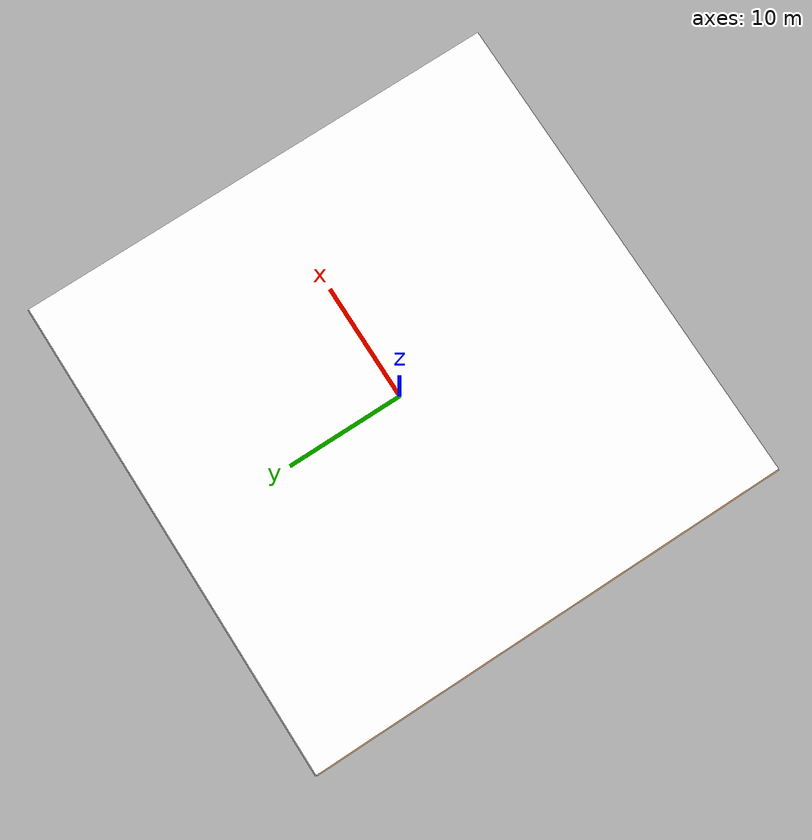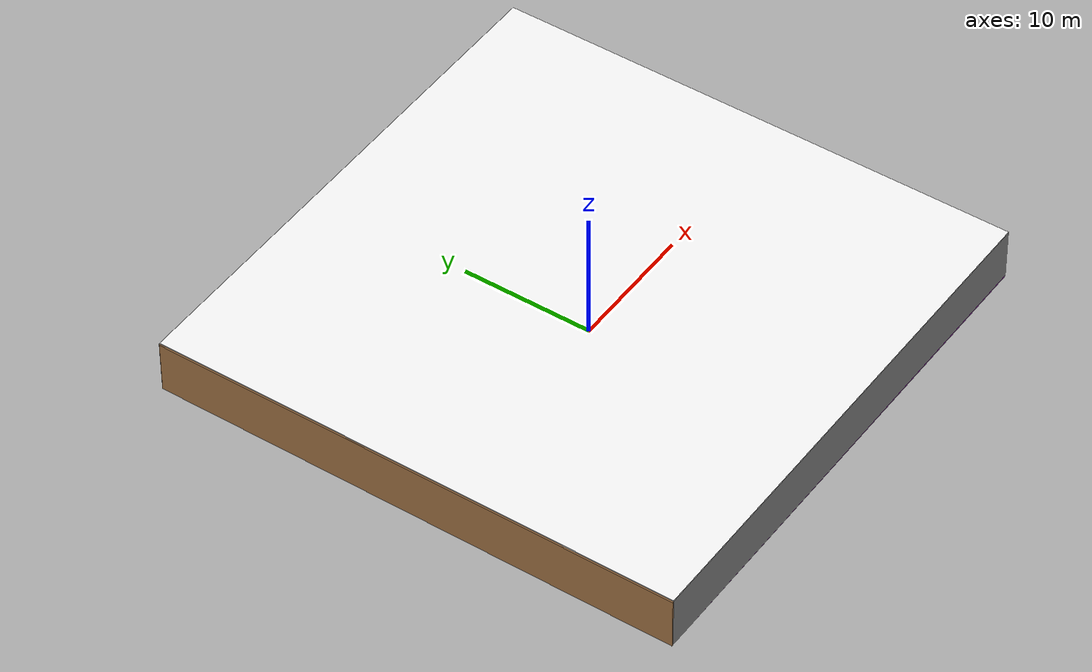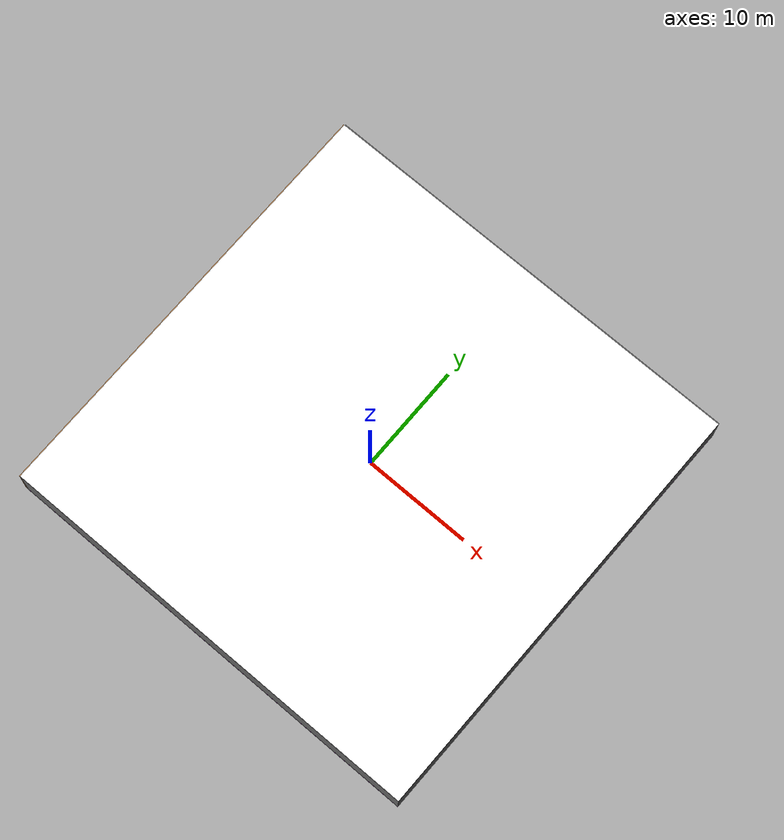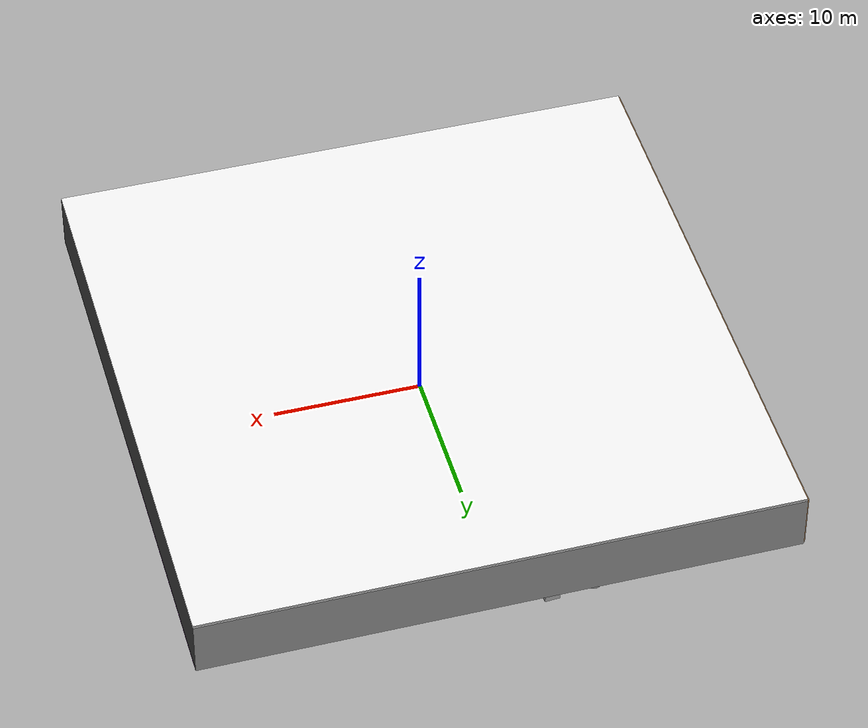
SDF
<sdf version="1.4">
 <world name="default">
  <physics type="ode">
   <max_step_size>0.001</max_step_size>
   <real_time_factor>1</real_time_factor>
   <real_time_update_rate>1000</real_time_update_rate>
   <gravity>0 0 -9.8</gravity>
  </physics>
  <scene><ambient>0.4 0.4 0.4 1</ambient><background>0.7 0.7 0.7 1</background><shadows>1</shadows></scene>
  <model name="Surrounding">
   <static>1</static>
   <link name="Ceiling">
    <collision name="Ceiling_Collision"><geometry><box><size>40 40 0.1</size></box></geometry></collision>
    <visual name="Ceiling_Visual">
     <geometry><box><size>40 40 0.1</size></box></geometry>
     <material>
      <script><uri>file://media/materials/scripts/gazebo.material</uri><name>Gazebo/WhiteGlow</name></script>
     </material>
    </visual>
    <pose>0 0 4.05 0 0 0</pose>
   </link>
   <link name="Wall_South">
    <collision name="Wall_South_Collision">
     <geometry><box><size>40 0 4</size></box></geometry>
     <pose>0 0 2 0 -0 0</pose>
    </collision>
    <visual name="Wall_South_Visual">
     <pose>0 0 2 0 -0 0</pose>
     <geometry><box><size>40 0 4</size></box></geometry>
     <material>
      <script><uri>file://media/materials/scripts/gazebo.material</uri><name>Gazebo/GreyGradientSky</name></script>
     </material>
    </visual>
    <velocity_decay><linear>0</linear><angular>0</angular></velocity_decay>
    <pose>0 -20 0 0 -0 0</pose>
   </link>
   <link name="Wall_East">
    <collision name="Wall_21_Collision">
     <geometry><box><size>40 0 4</size></box></geometry>
     <pose>0 0 2 0 -0 0</pose>
    </collision>
    <visual name="Wall_21_Visual">
     <pose>0 0 2 0 -0 0</pose>
     <geometry><box><size>40 0 4</size></box></geometry>
     <material>
      <script><uri>file://media/materials/scripts/gazebo.material</uri><name>Gazebo/DarkGrey</name></script>
     </material>
    </visual>
    <velocity_decay><linear>0</linear><angular>0</angular></velocity_decay>
    <pose>20 0 0 0 -0 1.5708</pose>
   </link>
   <link name="Wall_North">
    <collision name="Wall_22_Collision">
     <geometry><box><size>40 0.2 4</size></box></geometry>
     <pose>0 0 2 0 -0 0</pose>
    </collision>
    <visual name="Wall_22_Visual">
     <pose>0 0 2 0 -0 0</pose>
     <geometry><box><size>40 0.2 4</size></box></geometry>
     <material>
      <script><uri>file://media/materials/scripts/gazebo.material</uri><name>Gazebo/GreyGradientSky</name></script>
     </material>
    </visual>
    <velocity_decay><linear>0</linear><angular>0</angular></velocity_decay>
    <pose>0 20 0 0 -0 0</pose>
   </link>
   <link name="Wall_West">
    <collision name="Wall_23_Collision">
     <geometry><box><size>40 0.2 4</size></box></geometry>
     <pose>0 0 2 0 -0 0</pose>
    </collision>
    <visual name="Wall_23_Visual">
     <pose>0 0 2 0 -0 0</pose>
     <geometry><box><size>40 0.2 4</size></box></geometry>
     <material>
      <script><uri>file://media/materials/scripts/gazebo.material</uri><name>Gazebo/WoodFloor</name></script>
     </material>
    </visual>
    <velocity_decay><linear>0</linear><angular>0</angular></velocity_decay>
    <pose>-20 0 0 0 0 -1.5708</pose>
   </link>
   <link name="Ground_link">
    <collision name="collision">
     <pose>0 0 .05 0 -0 0</pose>
     <geometry><box><size>40 40 0.1</size></box></geometry>
    </collision>
    <visual name="visual">
     <pose>0 0 .05 0 -0 0</pose>
     <geometry><box><size>40 40 0.1</size></box></geometry>
     <material>
      <script><uri>file://media/materials/scripts/gazebo.material</uri><name>Gazebo/PurpleGlow</name></script>
     </material>
    </visual>
   </link>
   <static>1</static>
  </model>
  <spherical_coordinates>
   <surface_model>EARTH_WGS84</surface_model>
   <latitude_deg>0</latitude_deg>
   <longitude_deg>0</longitude_deg>
   <elevation>0</elevation>
   <heading_deg>0</heading_deg>
  </spherical_coordinates>
  <light name="lightball_0" type="diffuse">
   <diffuse>0.8 0.8 0.8 1</diffuse>
   <specular>0.2 0.2 0.2 1</specular>
   <attenuation>
    <range>100</range>
    <constant>0.7</constant>
    <linear>0.01</linear>
    <quadratic>0.001</quadratic>
   </attenuation>
   <direction>-0.5 0.1 -0.9</direction>
   <pose>14.5635231839 7.65231735805 2.32482643002 0 0 0</pose>
  </light>
  <light name="lightball_1" type="diffuse">
   <diffuse>0.8 0.8 0.8 1</diffuse>
   <specular>0.2 0.2 0.2 1</specular>
   <attenuation>
    <range>100</range>
    <constant>0.7</constant>
    <linear>0.01</linear>
    <quadratic>0.001</quadratic>
   </attenuation>
   <direction>-0.5 0.1 -0.9</direction>
   <pose>-5.96230932949 -12.1281901252 3.29322171421 0 0 0</pose>
  </light>
  <light name="lightball_2" type="diffuse">
   <diffuse>0.8 0.8 0.8 1</diffuse>
   <specular>0.2 0.2 0.2 1</specular>
   <attenuation>
    <range>100</range>
    <constant>0.7</constant>
    <linear>0.01</linear>
    <quadratic>0.001</quadratic>
   </attenuation>
   <direction>-0.5 0.1 -0.9</direction>
   <pose>-0.390260539433 5.0127035459 2.3932827838 0 0 0</pose>
  </light>
  <include><uri>model://cabinet</uri><pose>-16.4708447831 16.3401088895 0 0 0 1.37156791857</pose></include>
  <include>
   <uri>model://textured_shapes</uri>
   <pose>-13.5771557546 -15.4804386128 0 0 0 2.21154645942</pose>
  </include>
  <include><uri>model://cabinet</uri><pose>-13.9492969202 -6.36148730966 0 0 0 1.55912711794</pose></include>
  <include>
   <uri>model://robocup_3Dsim_goal</uri>
   <pose>-12.4717727768 -2.94684058437 0 0 0 1.51810186148</pose>
  </include>
  <include><uri>model://cabinet</uri><pose>-8.26108718551 10.3091368532 0 0 0 1.30038798996</pose></include>
  <include>
   <uri>model://robocup_3Dsim_goal</uri>
   <pose>-6.39012301918 11.8023761187 0 0 0 0.679966285241</pose>
  </include>
  <include>
   <uri>model://textured_shapes</uri>
   <pose>-4.68187516907 19.3973765161 0 0 0 1.63488314303</pose>
  </include>
  <include>
   <uri>model://robocup_3Dsim_goal</uri>
   <pose>-3.0207716279 -10.8478564234 0 0 0 1.79168621584</pose>
  </include>
  <include>
   <uri>model://textured_shapes</uri>
   <pose>-3.21250361874 -0.463739432779 0 0 0 2.11153107324</pose>
  </include>
  <include>
   <uri>model://robocup_3Dsim_goal</uri>
   <pose>-0.173822238177 -14.5731772428 0 0 0 0.49359573778</pose>
  </include>
  <include>
   <uri>model://construction_cone</uri>
   <pose>-0.577595440835 -1.77891010358 0 0 0 1.59122563687</pose>
  </include>
  <include><uri>model://cabinet</uri><pose>0.707607506051 9.40099812401 0 0 0 2.24581817408</pose></include>
  <include>
   <uri>model://robocup_3Dsim_goal</uri>
   <pose>2.40129314604 4.34578838063 0 0 0 0.998552190087</pose>
  </include>
  <include><uri>model://cabinet</uri><pose>6.4764222368 -12.3635765157 0 0 0 2.26371350507</pose></include>
  <include><uri>model://cabinet</uri><pose>6.69311268349 -4.32784846665 0 0 0 2.00087051253</pose></include>
  <include><uri>model://cabinet</uri><pose>9.6201373128 -13.6744462938 0 0 0 3.01393420917</pose></include>
  <include><uri>model://cabinet</uri><pose>8.79087485862 -8.16305515544 0 0 0 2.50237615432</pose></include>
  <include>
   <uri>model://construction_cone</uri>
   <pose>9.10170025876 -4.56469421343 0 0 0 2.06160377914</pose>
  </include>
  <include>
   <uri>model://textured_shapes</uri>
   <pose>8.58717388715 17.8637736402 0 0 0 1.01514288189</pose>
  </include>
  <include><uri>model://cabinet</uri><pose>16.4444793814 14.9586660126 0 0 0 0.443725926331</pose></include>
 </world>
</sdf>

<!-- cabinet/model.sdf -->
<sdf version="1.5">
  <model name="cabinet">
    <static>true</static>
    <link name="cabinet_bottom_plate">
      <inertial>
        <pose>0 0 -1 0 0 0</pose>
        <inertia>
          <ixx>2.050000</ixx>
          <ixy>0</ixy>
          <ixz>0</ixz>
          <iyy>2.050000</iyy>
          <iyz>0</iyz>
          <izz>2.050000</izz>
        </inertia>
        <mass>25.000000</mass>
      </inertial>
      <collision name="cabinet_bottom_plate_geom">
        <pose>0 0 0.010000 0 0 0</pose>
        <geometry>
          <box>
            <size>0.450000 0.450000 0.020000</size>
          </box>
        </geometry>
      </collision>
      <visual name="cabinet_bottom_plate_geom_visual">
        <pose>0 0 0.010000 0 0 0</pose>
        <geometry>
          <box>
            <size>0.450000 0.450000 0.020000</size>
          </box>
        </geometry>
        <material>
          <script>
            <uri>model://media/materials/scripts/gazebo.material</uri>
            <name>Gazebo/Wood</name>
          </script>
        </material>
      </visual>
      <collision name="cabinet_bottom_plate_geom_cabinet_back_plate">
        <pose>0.235000 0 0.510000 0 0 0</pose>
        <geometry>
          <box>
            <size>0.020000 0.450000 1.020000</size>
          </box>
        </geometry>
      </collision>
      <visual name="cabinet_bottom_plate_geom_cabinet_back_plate_visual">
        <pose>0.235000 0 0.510000 0 0 0</pose>
        <geometry>
          <box>
            <size>0.020000 0.450000 1.020000</size>
          </box>
        </geometry>
        <material>
          <script>
            <uri>model://media/materials/scripts/gazebo.material</uri>
            <name>Gazebo/Wood</name>
          </script>
        </material>
      </visual>
      <collision name="cabinet_bottom_plate_geom_cabinet_left_plate">
        <pose>0 0.235000 0.510000 0 0 0</pose>
        <geometry>
          <box>
            <size>0.450000 0.020000 1.020000</size>
          </box>
        </geometry>
      </collision>
      <visual name="cabinet_bottom_plate_geom_cabinet_left_plate_visual">
        <pose>0 0.235000 0.510000 0 0 0</pose>
        <geometry>
          <box>
            <size>0.450000 0.020000 1.020000</size>
          </box>
        </geometry>
        <material>
          <script>
            <uri>model://media/materials/scripts/gazebo.material</uri>
            <name>Gazebo/Wood</name>
          </script>
        </material>
      </visual>
      <collision name="cabinet_bottom_plate_geom_cabinet_middle_plate">
        <pose>0 0 0.510000 0 0 0</pose>
        <geometry>
          <box>
            <size>0.450000 0.450000 0.020000</size>
          </box>
        </geometry>
      </collision>
      <visual name="cabinet_bottom_plate_geom_cabinet_middle_plate_visual">
        <pose>0 0 0.510000 0 0 0</pose>
        <geometry>
          <box>
            <size>0.450000 0.450000 0.020000</size>
          </box>
        </geometry>
        <material>
          <script>
            <uri>model://media/materials/scripts/gazebo.material</uri>
            <name>Gazebo/Wood</name>
          </script>
        </material>
      </visual>
      <collision name="cabinet_bottom_plate_geom_cabinet_right_plate">
        <pose>0 -0.235000 0.510000 0 0 0</pose>
        <geometry>
          <box>
            <size>0.450000 0.020000 1.020000</size>
          </box>
        </geometry>
      </collision>
      <visual name="cabinet_bottom_plate_geom_cabinet_right_plate_visual">
        <pose>0 -0.235000 0.510000 0 0 0</pose>
        <geometry>
          <box>
            <size>0.450000 0.020000 1.020000</size>
          </box>
        </geometry>
        <material>
          <script>
            <uri>model://media/materials/scripts/gazebo.material</uri>
            <name>Gazebo/Wood</name>
          </script>
        </material>
      </visual>
      <collision name="cabinet_bottom_plate_geom_cabinet_top_plate">
        <pose>0 0 1.010000 0 0 0</pose>
        <geometry>
          <box>
            <size>0.450000 0.450000 0.020000</size>
          </box>
        </geometry>
      </collision>
      <visual name="cabinet_bottom_plate_geom_cabinet_top_plate_visual">
        <pose>0 0 1.010000 0 0 0</pose>
        <geometry>
          <box>
            <size>0.450000 0.450000 0.020000</size>
          </box>
        </geometry>
        <material>
          <script>
            <uri>model://media/materials/scripts/gazebo.material</uri>
            <name>Gazebo/Wood</name>
          </script>
        </material>
      </visual>
    </link>
  </model>
</sdf>

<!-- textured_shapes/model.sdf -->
<sdf version="1.6">
  <model name="textured_shapes">
    <pose>0 0 0.5 0 0 0</pose>
    <link name="box">
      <pose>0 -1.5 0 0 0 0</pose>
      <collision name="collision">
        <geometry>
          <box>
            <size>1 1 1</size>
          </box>
        </geometry>
      </collision>
      <visual name="visual">
        <geometry>
          <box>
            <size>1 1 1</size>
          </box>
        </geometry>
        <material>
          <script>
            <uri>model://../model_source/models/textured_shapes/materials/scripts</uri>
            <uri>model://../model_source/models/textured_shapes/materials/textures</uri>
            <name>TexturedShape/Squares</name>
          </script>
        </material>
      </visual>
    </link>
    <link name="sphere">
      <collision name="collision">
        <geometry>
          <sphere>
            <radius>0.5</radius>
          </sphere>
        </geometry>
      </collision>
      <visual name="visual">
        <geometry>
          <sphere>
            <radius>0.5</radius>
          </sphere>
        </geometry>
        <material>
          <script>
            <uri>model://../model_source/models/textured_shapes/materials/scripts</uri>
            <uri>model://../model_source/models/textured_shapes/materials/textures</uri>
            <name>TexturedShape/Squares</name>
          </script>
        </material>
      </visual>
    </link>
    <link name="cylinder">
      <pose>0 1.5 0 0 0 0</pose>
      <collision name="collision">
        <geometry>
          <cylinder>
            <radius>0.5</radius>
            <length>1</length>
          </cylinder>
        </geometry>
      </collision>
      <visual name="visual">
        <geometry>
          <cylinder>
            <radius>0.5</radius>
            <length>1</length>
          </cylinder>
        </geometry>
        <material>
          <script>
            <uri>model://../model_source/models/textured_shapes/materials/scripts</uri>
            <uri>model://../model_source/models/textured_shapes/materials/textures</uri>
            <name>TexturedShape/Squares</name>
          </script>
        </material>
      </visual>
    </link>
  </model>
</sdf>

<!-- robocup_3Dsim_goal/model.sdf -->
<sdf version="1.5">
  <model name="robocup_3d_goal">
    <static>true</static>
    <link name="left_post">
      <pose>0 1.05 0.45 0 0 0</pose>
      <collision name="collision">
        <geometry>
          <cylinder>
            <radius>0.05</radius>
            <length>0.9</length>
          </cylinder>
        </geometry>
      </collision>
      <visual name="visual">
        <geometry>
          <cylinder>
            <radius>0.05</radius>
            <length>0.9</length>
          </cylinder>
        </geometry>
        <material>
          <script>
            <uri>file://media/materials/scripts/gazebo.material</uri>
            <name>Gazebo/ZincYellow</name>
          </script>
        </material>
      </visual>
    </link>
    <link name="left_support_horiz_lower">
      <pose>0.30 1.05 0.01 0 0 0</pose>
      <collision name="collision">
        <geometry>
          <box>
            <size>0.50 0.02 0.02</size>
          </box>
        </geometry>
      </collision>
      <visual name="visual">
        <geometry>
          <box>
            <size>0.50 0.02 0.02</size>
          </box>
        </geometry>
        <material>
          <script>
            <uri>file://media/materials/scripts/gazebo.material</uri>
            <name>Gazebo/White</name>
          </script>
        </material>
      </visual>
    </link>
    <link name="left_support_horiz_upper">
      <pose>0.30 1.05 0.79 0 0 0</pose>
      <collision name="collision">
        <geometry>
          <box>
            <size>0.50 0.02 0.02</size>
          </box>
        </geometry>
      </collision>
      <visual name="visual">
        <geometry>
          <box>
            <size>0.50 0.02 0.02</size>
          </box>
        </geometry>
        <material>
          <script>
            <uri>file://media/materials/scripts/gazebo.material</uri>
            <name>Gazebo/White</name>
          </script>
        </material>
      </visual>
    </link>
    <link name="left_support_vertical">
      <pose>0.56 1.05 0.4 0 1.5708 0</pose>
      <collision name="collision">
        <geometry>
          <box>
            <size>0.80 0.02 0.02</size>
          </box>
        </geometry>
      </collision>
      <visual name="visual">
        <geometry>
          <box>
            <size>0.80 0.02 0.02</size>
          </box>
        </geometry>
        <material>
          <script>
            <uri>file://media/materials/scripts/gazebo.material</uri>
            <name>Gazebo/White</name>
          </script>
        </material>
      </visual>
    </link>
    <link name="right_support_horiz_lower">
      <pose>0.30 -1.05 0.01 0 0 0</pose>
      <collision name="collision">
        <geometry>
          <box>
            <size>0.50 0.02 0.02</size>
          </box>
        </geometry>
      </collision>
      <visual name="visual">
        <geometry>
          <box>
            <size>0.50 0.02 0.02</size>
          </box>
        </geometry>
        <material>
          <script>
            <uri>file://media/materials/scripts/gazebo.material</uri>
            <name>Gazebo/White</name>
          </script>
        </material>
      </visual>
    </link>
    <link name="right_support_horiz_upper">
      <pose>0.30 -1.05 0.79 0 0 0</pose>
      <collision name="collision">
        <geometry>
          <box>
            <size>0.50 0.02 0.02</size>
          </box>
        </geometry>
      </collision>
      <visual name="visual">
        <geometry>
          <box>
            <size>0.50 0.02 0.02</size>
          </box>
        </geometry>
        <material>
          <script>
            <uri>file://media/materials/scripts/gazebo.material</uri>
            <name>Gazebo/White</name>
          </script>
        </material>
      </visual>
    </link>
    <link name="right_support_vertical">
      <pose>0.56 -1.05 0.4 0 1.5708 0</pose>
      <collision name="collision">
        <geometry>
          <box>
            <size>0.80 0.02 0.02</size>
          </box>
        </geometry>
      </collision>
      <visual name="visual">
        <geometry>
          <box>
            <size>0.80 0.02 0.02</size>
          </box>
        </geometry>
        <material>
          <script>
            <uri>file://media/materials/scripts/gazebo.material</uri>
            <name>Gazebo/White</name>
          </script>
        </material>
      </visual>
    </link>
    <link name="center_support_horiz_lower">
      <pose>0.56 0 0.01 0 1.5708 0</pose>
      <collision name="collision">
        <geometry>
          <box>
            <size>0.02 2.08 0.02</size>
          </box>
        </geometry>
      </collision>
      <visual name="visual">
        <geometry>
          <box>
            <size>0.02 2.08 0.02</size>
          </box>
        </geometry>
        <material>
          <script>
            <uri>file://media/materials/scripts/gazebo.material</uri>
            <name>Gazebo/White</name>
          </script>
        </material>
      </visual>
    </link>
    <link name="center_support_horiz_upper">
      <pose>0.56 0 0.79 0 1.5708 0</pose>
      <collision name="collision">
        <geometry>
          <box>
            <size>0.02 2.08 0.02</size>
          </box>
        </geometry>
      </collision>
      <visual name="visual">
        <geometry>
          <box>
            <size>0.02 2.08 0.02</size>
          </box>
        </geometry>
        <material>
          <script>
            <uri>file://media/materials/scripts/gazebo.material</uri>
            <name>Gazebo/White</name>
          </script>
        </material>
      </visual>
    </link>
    <link name="right_post">
      <pose>0 -1.05 0.45 0 0 0</pose>
      <collision name="collision">
        <geometry>
          <cylinder>
            <radius>0.05</radius>
            <length>0.9</length>
          </cylinder>
        </geometry>
      </collision>
      <visual name="visual">
        <geometry>
          <cylinder>
            <radius>0.05</radius>
            <length>0.9</length>
          </cylinder>
        </geometry>
        <material>
          <script>
            <uri>file://media/materials/scripts/gazebo.material</uri>
            <name>Gazebo/ZincYellow</name>
          </script>
        </material>
      </visual>
    </link>
    <link name="crossbar">
      <pose>0 0 0.85 1.57 1.57 0</pose>
      <collision name="collision">
        <geometry>
          <cylinder>
            <radius>0.05</radius>
            <length>2.0</length>
          </cylinder>
        </geometry>
      </collision>
      <visual name="visual">
        <geometry>
          <cylinder>
            <radius>0.05</radius>
            <length>2.0</length>
          </cylinder>
        </geometry>
        <material>
          <script>
            <uri>file://media/materials/scripts/gazebo.material</uri>
            <name>Gazebo/ZincYellow</name>
          </script>
        </material>
      </visual>
    </link>
    <link name="center_net">
      <pose>0.56 0 0.40 0 0 0</pose>
      <collision name="collision">
        <geometry>
          <box>
            <size>0.01 2.1 0.80</size>
          </box>
        </geometry>
      </collision>
      <visual name="visual">
        <geometry>
          <box>
            <size>0.01 2.1 0.80</size>
          </box>
        </geometry>
        <material>
          <script>
            <uri>model://../model_source/models/robocup09_spl_field/materials/scripts/</uri>
            <uri>model://../model_source/models/robocup09_spl_field/materials/textures/</uri>
            <name>RoboCup/Net</name>
          </script>
        </material>
      </visual>
    </link>
    <link name="left_net">
      <pose>0.30 1.05 0.40 0 0 0</pose>
      <collision name="collision">
        <geometry>
          <box>
            <size>0.50 0.01 0.76</size>
          </box>
        </geometry>
      </collision>
      <visual name="visual">
        <geometry>
          <box>
            <size>0.50 0.01 0.76</size>
          </box>
        </geometry>
        <material>
          <script>
            <uri>model://../model_source/models/robocup09_spl_field/materials/scripts/</uri>
            <uri>model://../model_source/models/robocup09_spl_field/materials/textures/</uri>
            <name>RoboCup/Net</name>
          </script>
        </material>
      </visual>
    </link>
    <link name="right_net">
      <pose>0.30 -1.05 0.40 0 0 0</pose>
      <collision name="collision">
        <geometry>
          <box>
            <size>0.50 0.01 0.76</size>
          </box>
        </geometry>
      </collision>
      <visual name="visual">
        <geometry>
          <box>
            <size>0.50 0.01 0.76</size>
          </box>
        </geometry>
        <material>
          <script>
            <uri>model://../model_source/models/robocup09_spl_field/materials/scripts/</uri>
            <uri>model://../model_source/models/robocup09_spl_field/materials/textures/</uri>
            <name>RoboCup/Net</name>
          </script>
        </material>
      </visual>
    </link>
  </model>
</sdf>

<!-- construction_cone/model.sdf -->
<sdf version="1.5">
  <model name="Construction Cone">
    <link name="link">
      <collision name="collision">
        <geometry>
          <mesh>
            <scale>10 10 10</scale>
            <uri>file://isr-testbed/construction_cone/meshes/construction_cone.dae</uri>
          </mesh>
        </geometry>
      </collision>
      <visual name="visual">
        <geometry>
          <mesh>
            <scale>10 10 10</scale>
            <uri>file://isr-testbed/construction_cone/meshes/construction_cone.dae</uri>
          </mesh>
        </geometry>
      </visual>
    </link>
  </model>
</sdf>
